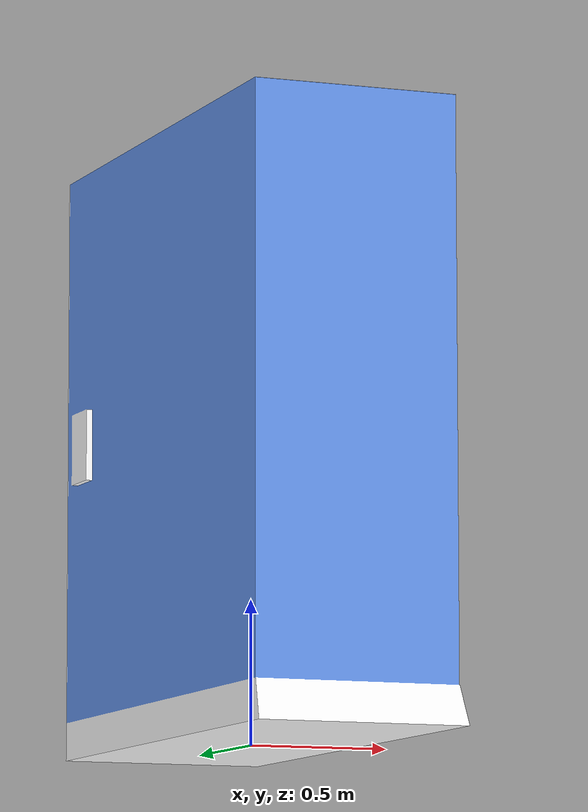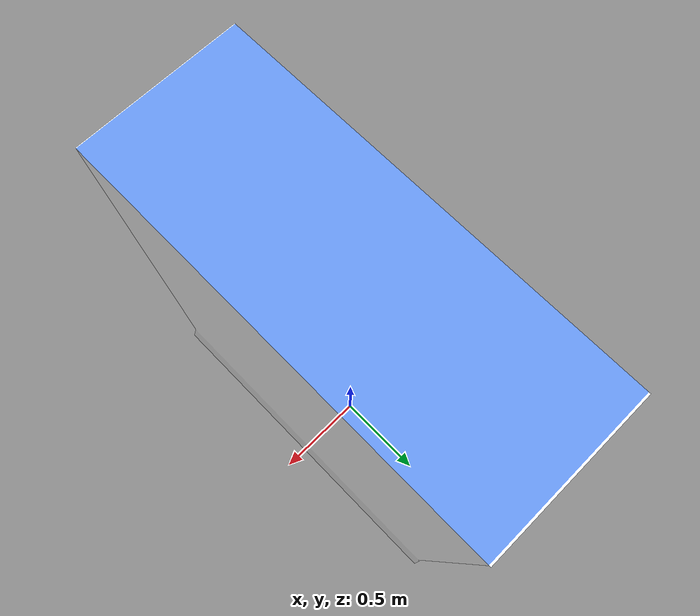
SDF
<?xml version="1.0" ?>
<sdf version="1.5">
  <model name="shower_small_1">
    <link name="link">
      <pose>0 0 0 0 0 0</pose>
      <collision name="collision">
        <geometry>
          <mesh>
            <uri>model://shower_small_1/meshes/model.dae</uri>
          </mesh>
        </geometry>
      </collision>
      <visual name="visual">
        <geometry>
          <mesh>
            <uri>model://shower_small_1/meshes/model.dae</uri>
          </mesh>
        </geometry>
      </visual>
    </link>
    <static>1</static>
  </model>
</sdf>
